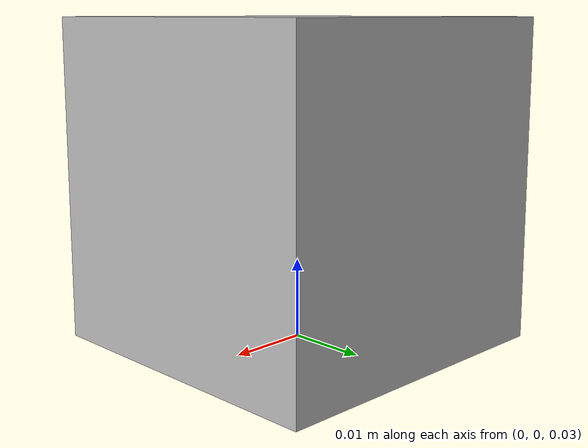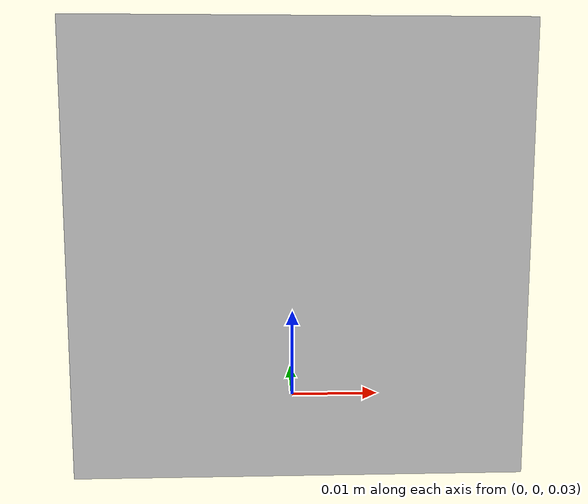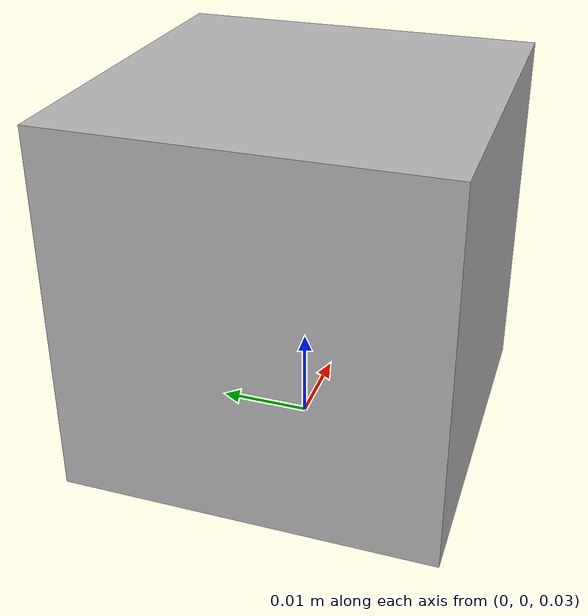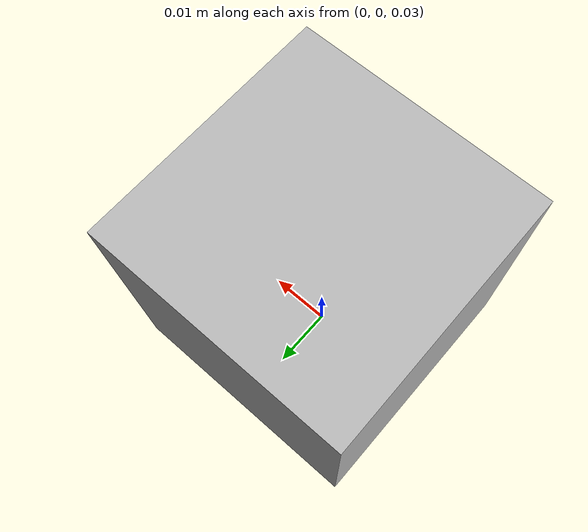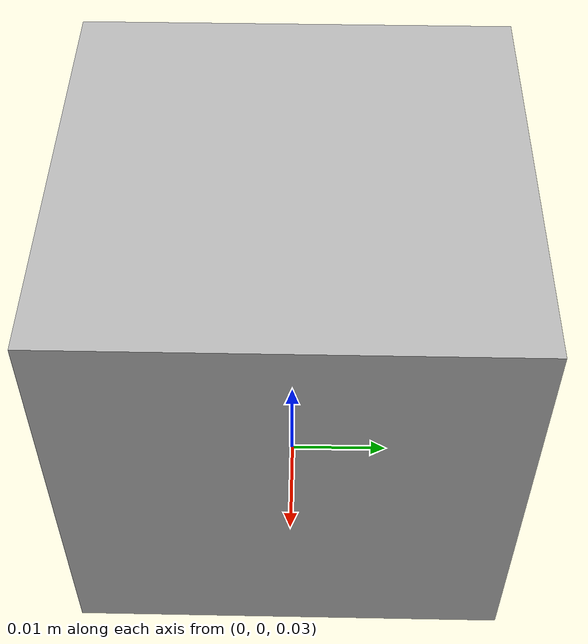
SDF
<?xml version="1.0" ?>
<sdf version="1.5">
  <model name="wideanglecamera">
    <static>1</static>
    <pose>0 0 0.05 0 0 0</pose>
    <link name="link">
      <inertial>
        <mass>0.1</mass>
      </inertial>
      <collision name="collision">
        <geometry>
          <box>
            <size>0.04 0.04 0.04</size>
          </box>
        </geometry>
      </collision>
      <visual name="visual">
        <geometry>
          <box>
            <size>0.04 0.04 0.04</size>
          </box>
        </geometry>
	  </visual>
	<!-- You should be already familiar with sdf definition of the `camera` sensor, the only difference is that you change it's `type` to `wideanglecamera` -->
	<sensor name="camera" type="wideanglecamera">
	  <camera>
		<horizontal_fov>3.1416</horizontal_fov>
		<image>
		  <width>1280</width>
		  <height>720</height>
		</image>
		<clip>
		  <near>0.1</near>
		  <far>100</far>
		</clip>
    <save enabled="true">
      <path>/home/changkun/Desktop/Calibrate_extrinsic</path>
    </save>

		 <!-- A new section named `lens`. -->
		<lens>
		  <!-- type element is mandatory -->
		  <type>custom</type>

		  <!-- manually defined mapping function r = c1*f*fun(theta/c2 + c3) -->
		  <!-- More information here: https://en.wikipedia.org/wiki/Fisheye_lens#Mapping_function -->
		  <custom_function>
		    <c1>2</c1>   <!-- linear scaling -->
		    <c2>2</c2>      <!-- angle scaling -->
		    <f>1</f>      <!-- one more scaling parameter -->
		    <fun>id</fun>  <!-- one of sin,tan,id -->
		  </custom_function>

		  <!-- if it is set to `true` your horizontal FOV will ramain as defined -->
		  <!-- othervise it depends on lens type and custom function, if there is one -->
		  <scale_to_hfov>true</scale_to_hfov>
		  <!-- clip everything that is outside of this angle -->
		  <cutoff_angle>1.508</cutoff_angle>
		  <!-- resolution of the cubemap texture, the highter it is - the sharper is your image -->
		  <env_texture_size>1280</env_texture_size>
		</lens>
	  <always_on>1</always_on>
	  <update_rate>2</update_rate>
	  </camera>

		<plugin name="camera_controller" filename="libgazebo_ros_camera.so">
    <cameraName>camera1</cameraName>
    <imageTopicName>image_raw</imageTopicName>
    <cameraInfoTopicName>camera_info</cameraInfoTopicName>
    <frameName>camera_link</frameName>
    <hackBaseline>0.07</hackBaseline>
  </plugin>
	</sensor>
	</link>
  </model>
</sdf>
